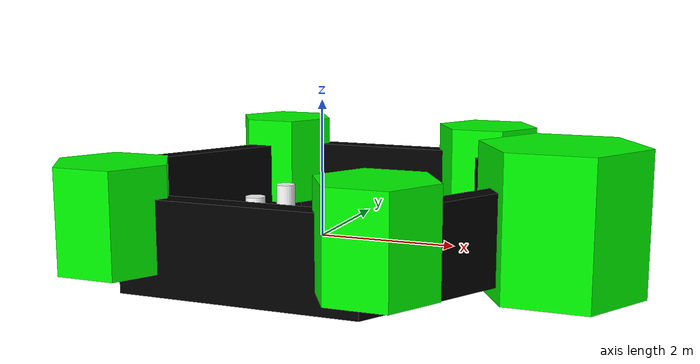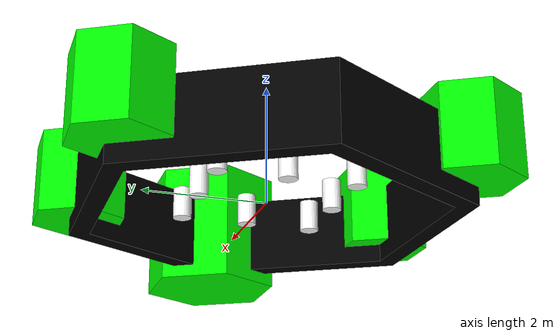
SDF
<?xml version="1.0" ?>
<sdf version="1.5">
    <model name='ros_symbol'>
      <static>1</static>
      <link name='symbol'>
        <collision name='one_one'>
          <pose>-1.1 -1.1 0.25 0 0 0</pose>
          <geometry>
            <cylinder>
              <radius>0.15</radius>
              <length>0.5</length>
            </cylinder>
          </geometry>
          <max_contacts>10</max_contacts>
          <surface>
            <bounce/>
            <friction>
              <ode/>
            </friction>
            <contact>
              <ode/>
            </contact>
          </surface>
        </collision>

        <visual name='one_one'>
          <pose>-1.1 -1.1 0.25 0 0 0</pose>
          <geometry>
            <cylinder>
              <radius>0.15</radius>
              <length>0.5</length>
            </cylinder>
          </geometry>
          <material>
            <ambient>1 1 1 1</ambient>
            <diffuse>1 1 1 1</diffuse>
            <specular>0.2 0.2 0.2 1</specular>
            <emissive>0 0 0 1</emissive>
          </material>
        </visual>

        <collision name='one_two'>
          <pose>-1.1 0 0.25 0 0 0</pose>
          <geometry>
            <cylinder>
              <radius>0.15</radius>
              <length>0.5</length>
            </cylinder>
          </geometry>
          <max_contacts>10</max_contacts>
          <surface>
            <bounce/>
            <friction>
              <ode/>
            </friction>
            <contact>
              <ode/>
            </contact>
          </surface>
        </collision>

        <visual name='one_two'>
          <pose>-1.1 0 0.25 0 0 0</pose>
          <geometry>
            <cylinder>
              <radius>0.15</radius>
              <length>0.5</length>
            </cylinder>
          </geometry>
          <material>
            <ambient>1 1 1 1</ambient>
            <diffuse>1 1 1 1</diffuse>
            <specular>0.2 0.2 0.2 1</specular>
            <emissive>0 0 0 1</emissive>
          </material>
        </visual>

        <collision name='one_three'>
          <pose>-1.1 1.1 0.25 0 0 0</pose>
          <geometry>
            <cylinder>
              <radius>0.15</radius>
              <length>0.5</length>
            </cylinder>
          </geometry>
          <max_contacts>10</max_contacts>
          <surface>
            <bounce/>
            <friction>
              <ode/>
            </friction>
            <contact>
              <ode/>
            </contact>
          </surface>
        </collision>

        <visual name='one_three'>
          <pose>-1.1 1.1 0.25 0 0 0</pose>
          <geometry>
            <cylinder>
              <radius>0.15</radius>
              <length>0.5</length>
            </cylinder>
          </geometry>
          <material>
            <ambient>1 1 1 1</ambient>
            <diffuse>1 1 1 1</diffuse>
            <specular>0.2 0.2 0.2 1</specular>
            <emissive>0 0 0 1</emissive>
          </material>
        </visual>

        <collision name='two_one'>
          <pose>0 -1.1 0.25 0 0 0</pose>
          <geometry>
            <cylinder>
              <radius>0.15</radius>
              <length>0.5</length>
            </cylinder>
          </geometry>
          <max_contacts>10</max_contacts>
          <surface>
            <bounce/>
            <friction>
              <ode/>
            </friction>
            <contact>
              <ode/>
            </contact>
          </surface>
        </collision>

        <visual name='two_one'>
          <pose>0 -1.1 0.25 0 0 0</pose>
          <geometry>
            <cylinder>
              <radius>0.15</radius>
              <length>0.5</length>
            </cylinder>
          </geometry>
          <material>
            <ambient>1 1 1 1</ambient>
            <diffuse>1 1 1 1</diffuse>
            <specular>0.2 0.2 0.2 1</specular>
            <emissive>0 0 0 1</emissive>
          </material>
        </visual>

        <collision name='two_three'>
          <pose>0 1.1 0.25 0 0 0</pose>
          <geometry>
            <cylinder>
              <radius>0.15</radius>
              <length>0.5</length>
            </cylinder>
          </geometry>
          <max_contacts>10</max_contacts>
          <surface>
            <bounce/>
            <friction>
              <ode/>
            </friction>
            <contact>
              <ode/>
            </contact>
          </surface>
        </collision>

        <visual name='two_three'>
          <pose>0 1.1 0.25 0 0 0</pose>
          <geometry>
            <cylinder>
              <radius>0.15</radius>
              <length>0.5</length>
            </cylinder>
          </geometry>
          <material>
            <ambient>1 1 1 1</ambient>
            <diffuse>1 1 1 1</diffuse>
            <specular>0.2 0.2 0.2 1</specular>
            <emissive>0 0 0 1</emissive>
          </material>
        </visual>

        <collision name='three_one'>
          <pose>1.1 -1.1 0.25 0 0 0</pose>
          <geometry>
            <cylinder>
              <radius>0.15</radius>
              <length>0.5</length>
            </cylinder>
          </geometry>
          <max_contacts>10</max_contacts>
          <surface>
            <bounce/>
            <friction>
              <ode/>
            </friction>
            <contact>
              <ode/>
            </contact>
          </surface>
        </collision>

        <visual name='three_one'>
          <pose>1.1 -1.1 0.25 0 0 0</pose>
          <geometry>
            <cylinder>
              <radius>0.15</radius>
              <length>0.5</length>
            </cylinder>
          </geometry>
          <material>
            <ambient>1 1 1 1</ambient>
            <diffuse>1 1 1 1</diffuse>
            <specular>0.2 0.2 0.2 1</specular>
            <emissive>0 0 0 1</emissive>
          </material>
        </visual>

        <collision name='three_two'>
          <pose>1.1 0 0.25 0 0 0</pose>
          <geometry>
            <cylinder>
              <radius>0.15</radius>
              <length>0.5</length>
            </cylinder>
          </geometry>
          <max_contacts>10</max_contacts>
          <surface>
            <bounce/>
            <friction>
              <ode/>
            </friction>
            <contact>
              <ode/>
            </contact>
          </surface>
        </collision>

        <visual name='three_two'>
          <pose>1.1 0 0.25 0 0 0</pose>
          <geometry>
            <cylinder>
              <radius>0.15</radius>
              <length>0.5</length>
            </cylinder>
          </geometry>
          <material>
            <ambient>1 1 1 1</ambient>
            <diffuse>1 1 1 1</diffuse>
            <specular>0.2 0.2 0.2 1</specular>
            <emissive>0 0 0 1</emissive>
          </material>
        </visual>

        <collision name='three_three'>
          <pose>1.1 1.1 0.25 0 0 0</pose>
          <geometry>
            <cylinder>
              <radius>0.15</radius>
              <length>0.5</length>
            </cylinder>
          </geometry>
          <max_contacts>10</max_contacts>
          <surface>
            <bounce/>
            <friction>
              <ode/>
            </friction>
            <contact>
              <ode/>
            </contact>
          </surface>
        </collision>

        <visual name='three_three'>
          <pose>1.1 1.1 0.25 0 0 0</pose>
          <geometry>
            <cylinder>
              <radius>0.15</radius>
              <length>0.5</length>
            </cylinder>
          </geometry>
          <material>
            <ambient>1 1 1 1</ambient>
            <diffuse>1 1 1 1</diffuse>
            <specular>0.2 0.2 0.2 1</specular>
            <emissive>0 0 0 1</emissive>
          </material>
        </visual>

        <!-- Draw Hexagon -->
        <collision name='head'>
          <pose>3.5 0 -0.5 0 0 0</pose>
          <geometry>
            <mesh>
              <uri>model://turtlebot3_world/meshes/hexagon.dae</uri>
              <scale>0.8 0.8 0.8</scale>
            </mesh>
          </geometry>
          <max_contacts>10</max_contacts>
          <surface>
            <bounce/>
            <friction>
              <ode/>
            </friction>
            <contact>
              <ode/>
            </contact>
          </surface>
        </collision>

        <visual name='head'>
          <pose>3.5 0 -0.5 0 0 0</pose>
          <geometry>
            <mesh>
              <uri>model://turtlebot3_world/meshes/hexagon.dae</uri>
              <scale>0.8 0.8 0.8</scale>
            </mesh>
          </geometry>
          <material>
            <ambient>0 1 0 1</ambient>
            <diffuse>0 1 0 1</diffuse>
            <specular>0.2 0.2 0.2 1</specular>
            <emissive>0 0 0 1</emissive>
          </material>
        </visual>

        <collision name='left_hand'>
          <pose>1.8 2.7 0 0 0 0</pose>
          <geometry>
            <mesh>
              <uri>model://turtlebot3_world/meshes/hexagon.dae</uri>
              <scale>0.55 0.55 0.55</scale>
            </mesh>
          </geometry>
          <max_contacts>10</max_contacts>
          <surface>
            <bounce/>
            <friction>
              <ode/>
            </friction>
            <contact>
              <ode/>
            </contact>
          </surface>
        </collision>

        <visual name='left_hand'>
          <pose>1.8 2.7 0 0 0 0</pose>
          <geometry>
            <mesh>
              <uri>model://turtlebot3_world/meshes/hexagon.dae</uri>
              <scale>0.55 0.55 0.55</scale>
            </mesh>
          </geometry>
          <material>
            <ambient>0 1 0 1</ambient>
            <diffuse>0 1 0 1</diffuse>
            <specular>0.2 0.2 0.2 1</specular>
            <emissive>0 0 0 1</emissive>
          </material>
        </visual>

        <collision name='right_hand'>
          <pose>1.8 -2.7 0 0 0 0</pose>
          <geometry>
            <mesh>
              <uri>model://turtlebot3_world/meshes/hexagon.dae</uri>
              <scale>0.55 0.55 0.55</scale>
            </mesh>
          </geometry>
          <max_contacts>10</max_contacts>
          <surface>
            <bounce/>
            <friction>
              <ode/>
            </friction>
            <contact>
              <ode/>
            </contact>
          </surface>
        </collision>

        <visual name='right_hand'>
          <pose>1.8 -2.7 0 0 0 0</pose>
          <geometry>
            <mesh>
              <uri>model://turtlebot3_world/meshes/hexagon.dae</uri>
              <scale>0.55 0.55 0.55</scale>
            </mesh>
          </geometry>
          <material>
            <ambient>0 1 0 1</ambient>
            <diffuse>0 1 0 1</diffuse>
            <specular>0.2 0.2 0.2 1</specular>
            <emissive>0 0 0 1</emissive>
          </material>
        </visual>

        <collision name='left_foot'>
          <pose>-1.8 2.7 0 0 0 0</pose>
          <geometry>
            <mesh>
              <uri>model://turtlebot3_world/meshes/hexagon.dae</uri>
              <scale>0.55 0.55 0.55</scale>
            </mesh>
          </geometry>
          <max_contacts>10</max_contacts>
          <surface>
            <bounce/>
            <friction>
              <ode/>
            </friction>
            <contact>
              <ode/>
            </contact>
          </surface>
        </collision>

        <visual name='left_foot'>
          <pose>-1.8 2.7 0 0 0 0</pose>
          <geometry>
            <mesh>
              <uri>model://turtlebot3_world/meshes/hexagon.dae</uri>
              <scale>0.55 0.55 0.55</scale>
            </mesh>
          </geometry>
          <material>
            <ambient>0 1 0 1</ambient>
            <diffuse>0 1 0 1</diffuse>
            <specular>0.2 0.2 0.2 1</specular>
            <emissive>0 0 0 1</emissive>
          </material>
        </visual>

        <collision name='right_foot'>
          <pose>-1.8 -2.7 0 0 0 0</pose>
          <geometry>
            <mesh>
              <uri>model://turtlebot3_world/meshes/hexagon.dae</uri>
              <scale>0.55 0.55 0.55</scale>
            </mesh>
          </geometry>
          <max_contacts>10</max_contacts>
          <surface>
            <bounce/>
            <friction>
              <ode/>
            </friction>
            <contact>
              <ode/>
            </contact>
          </surface>
        </collision>

        <visual name='right_foot'>
          <pose>-1.8 -2.7 0 0 0 0</pose>
          <geometry>
            <mesh>
              <uri>model://turtlebot3_world/meshes/hexagon.dae</uri>
              <scale>0.55 0.55 0.55</scale>
            </mesh>
          </geometry>
          <material>
            <ambient>0 1 0 1</ambient>
            <diffuse>0 1 0 1</diffuse>
            <specular>0.2 0.2 0.2 1</specular>
            <emissive>0 0 0 1</emissive>
          </material>
        </visual>

        <!-- Draw Wall -->
        <collision name='body'>
        <pose>0 0 -0.3 0 0 -1.5708</pose>
        <geometry>
          <mesh>
            <uri>model://turtlebot3_world/meshes/wall.dae</uri>
            <scale>0.25 0.25 0.25</scale>
          </mesh>
        </geometry>
        <max_contacts>10</max_contacts>
        <surface>
          <bounce/>
          <friction>
            <ode/>
          </friction>
          <contact>
            <ode/>
          </contact>
        </surface>
      </collision>

      <visual name='body'>
        <pose>0 0 -0.3 0 0 -1.5708</pose>
        <geometry>
          <mesh>
            <uri>model://turtlebot3_world/meshes/wall.dae</uri>
            <scale>0.25 0.25 0.25</scale>
          </mesh>
        </geometry>
        <material>
          <ambient>0 0 0 1</ambient>
          <diffuse>0 0 0 1</diffuse>
          <specular>0 0 0 1</specular>
          <emissive>0 0 0 1</emissive>
        </material>
      </visual>
    </link>
  </model>
</sdf>
